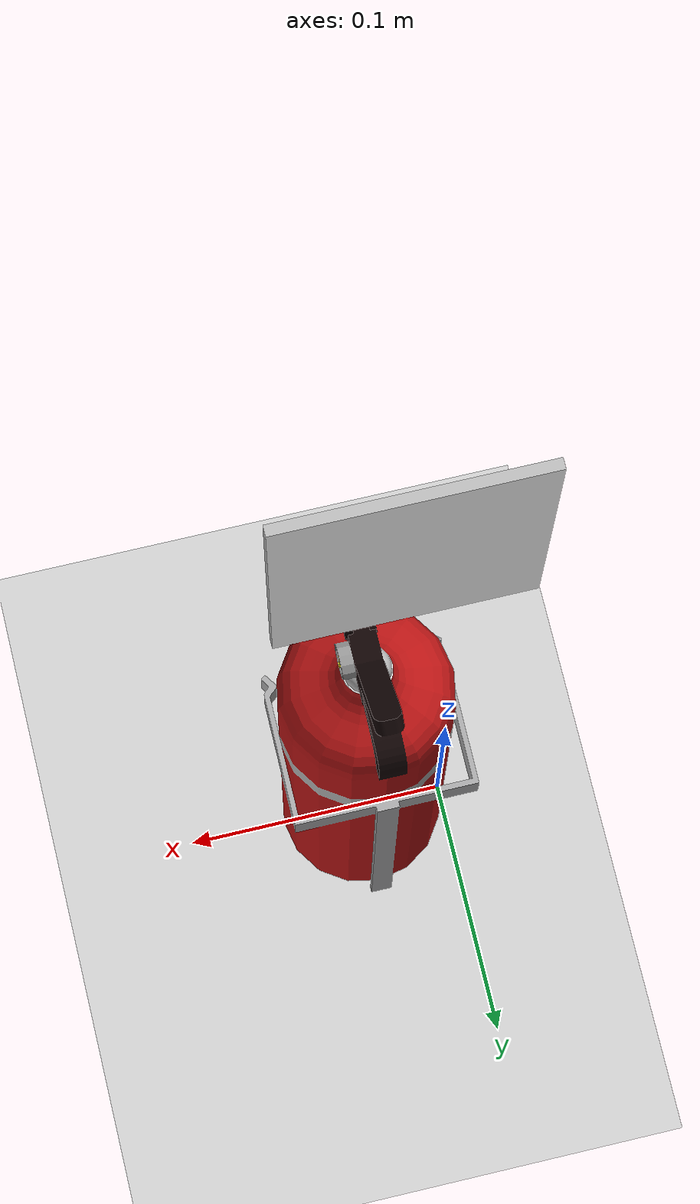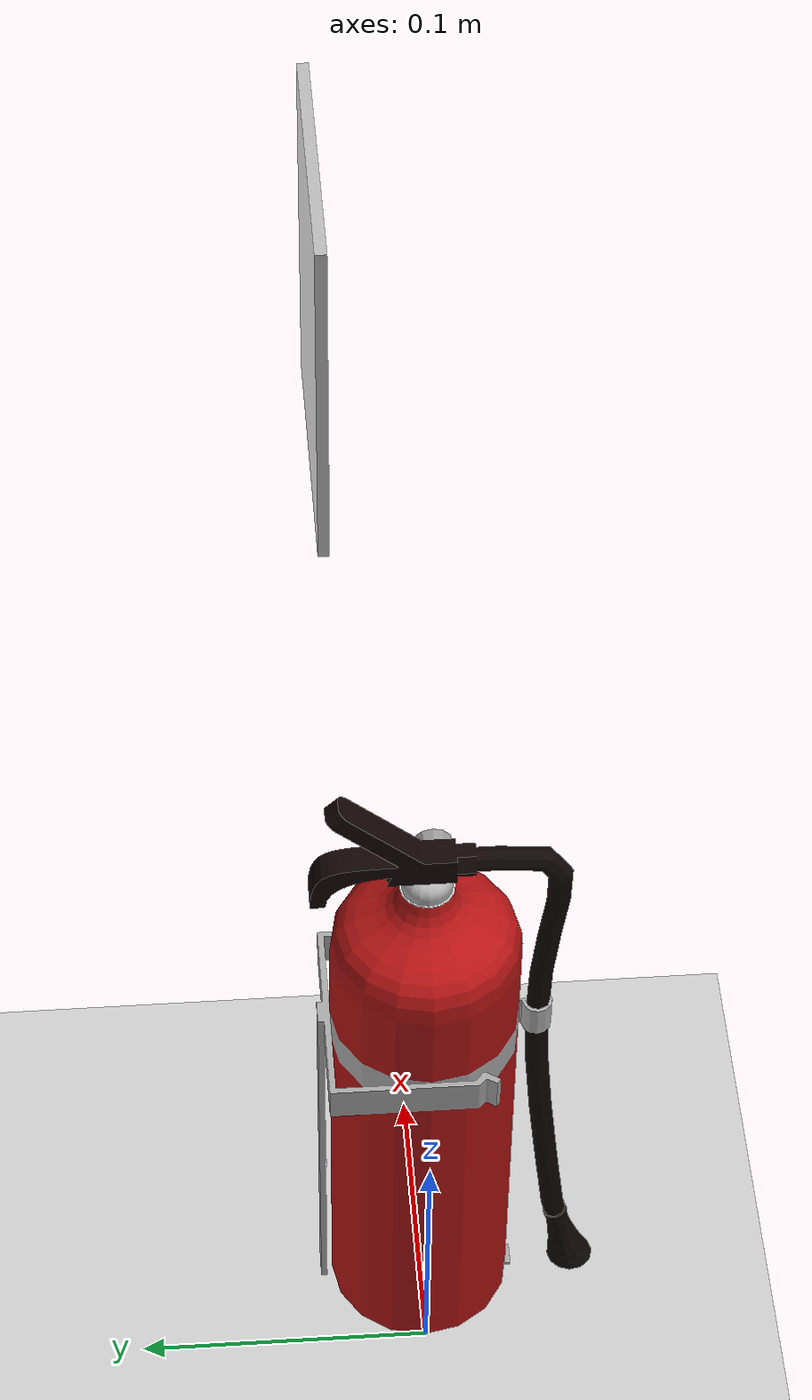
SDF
<?xml version="1.0" ?>
<sdf version="1.5">
  <world name="default">

    <!-- A global light source -->
    <include>
      <uri>model://sun</uri>
    </include>

    <!-- A ground plane -->
    <include>
      <uri>model://ground_plane</uri>
    </include>

    <!-- A fire extinguisher -->
    <include>
      <static>true</static>
        <pose>0 0 0 0 0 0</pose>
      <uri>model://fire_extinguisher</uri>
     </include>
  </world>
</sdf>

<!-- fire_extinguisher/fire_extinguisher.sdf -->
<sdf version="1.5">
  <model name="fire_extinguisher">
    <static>true</static>
    <link name="fire_extinguisher_link">
        <collision name="fire_extinguisher_collision">
         <geometry>
            <mesh>
                <uri>model://fire_extinguisher/meshes/model.dae</uri>
                <scale>0.5 0.5 0.5</scale>
            </mesh>
        </geometry>
      </collision>

      <visual name="fire_extinguisher_mesh">
        <cast_shadows>true</cast_shadows>
        <geometry>
            <mesh>
                <uri>model://fire_extinguisher/meshes/model.dae</uri>
                <scale>0.5 0.5 0.5</scale>
            </mesh>
        </geometry>
      </visual>
    </link>
  </model>
</sdf>
